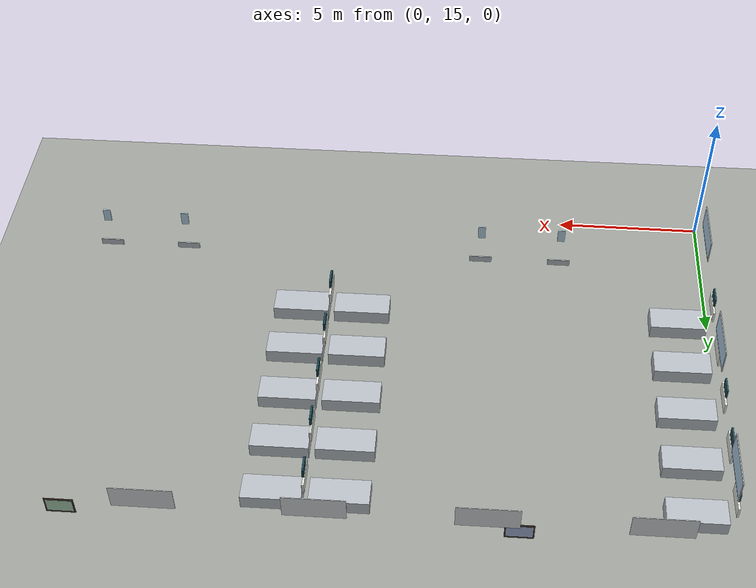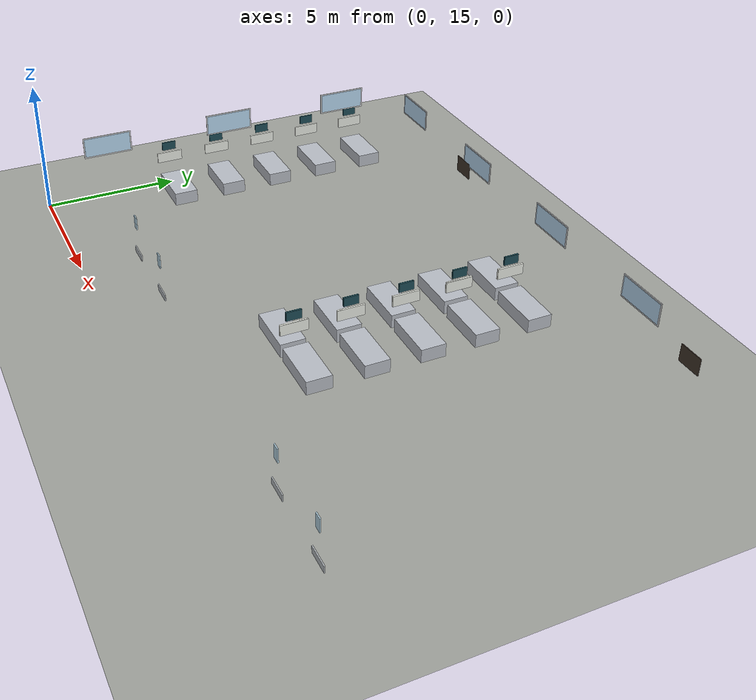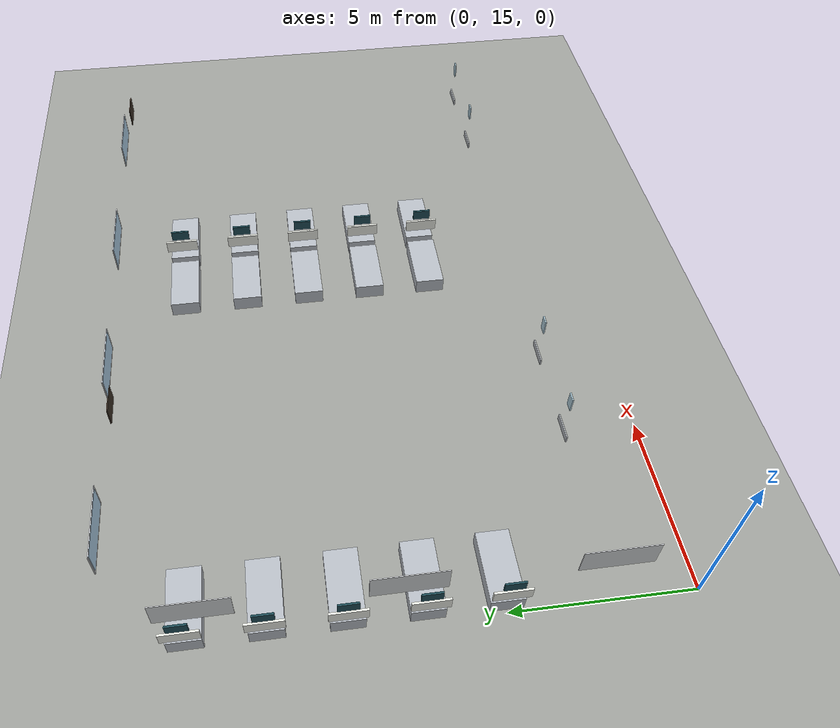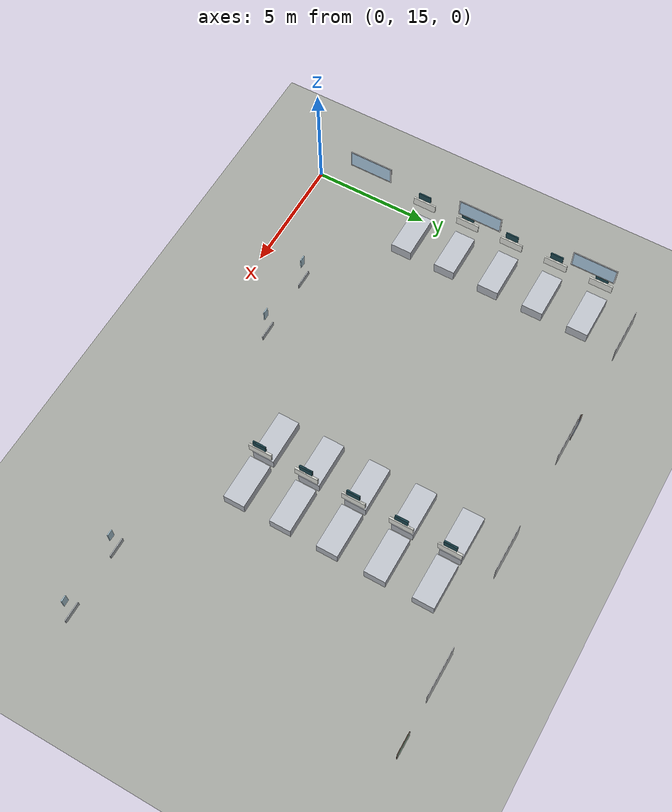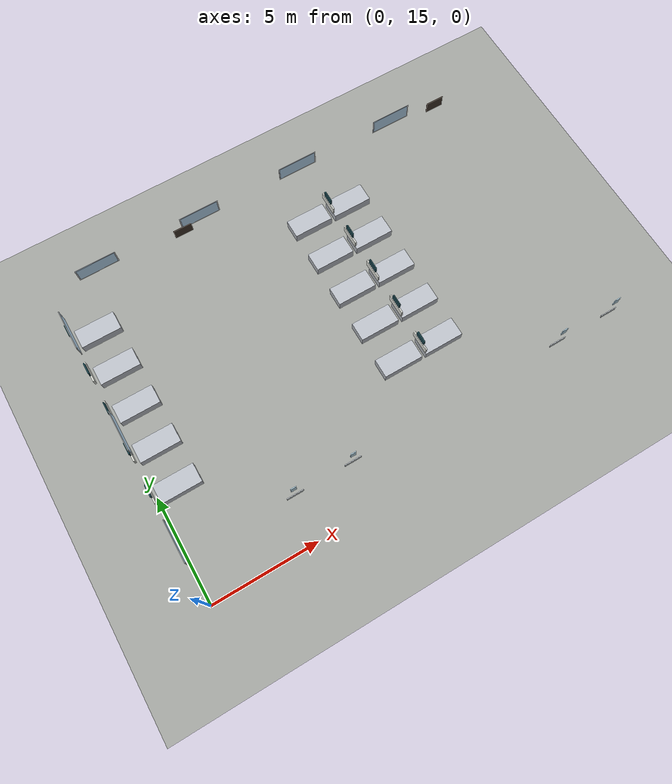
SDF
<sdf version="1.9">
 <world name="hospital">
  <model name="ground_plane">
   <static>true</static>
   <link name="link">
    <collision name="collision">
     <geometry><plane><normal>0 0 1</normal><size>200 200</size></plane></geometry>
    </collision>
    <visual name="visual">
     <pose>0 0 -0.03 0 0 0</pose>
     <cast_shadows>false</cast_shadows>
     <geometry><plane><normal>0 0 1</normal><size>200 200</size></plane></geometry>
     <material>
      <ambient>0.310 0.315 0.305 1.0</ambient>
      <diffuse>0.620 0.630 0.610 1.0</diffuse>
      <specular>0.14 0.14 0.14 1</specular>
      <emissive>0.000 0.000 0.000 1</emissive>
     </material>
    </visual>
   </link>
  </model>
  <model name="bed_0">
   <static>true</static>
   <pose>1.05 20.0 0.25 0 0 0</pose>
   <link name="link">
    <collision name="c"><geometry><box><size>1.9 0.8999999999999986 0.5</size></box></geometry></collision>
    <visual name="v">
     <visibility_flags>2</visibility_flags>
     <geometry><box><size>1.9 0.8999999999999986 0.5</size></box></geometry>
     <material>
      <ambient>0.360 0.370 0.385 1.0</ambient>
      <diffuse>0.720 0.740 0.770 1.0</diffuse>
      <specular>0.14 0.14 0.14 1</specular>
      <emissive>0.000 0.000 0.000 1</emissive>
     </material>
    </visual>
   </link>
  </model>
  <model name="bed_1">
   <static>true</static>
   <pose>11.95 20.0 0.25 0 0 0</pose>
   <link name="link">
    <collision name="c">
     <geometry><box><size>1.9000000000000004 0.8999999999999986 0.5</size></box></geometry>
    </collision>
    <visual name="v">
     <visibility_flags>2</visibility_flags>
     <geometry><box><size>1.9000000000000004 0.8999999999999986 0.5</size></box></geometry>
     <material>
      <ambient>0.360 0.370 0.385 1.0</ambient>
      <diffuse>0.720 0.740 0.770 1.0</diffuse>
      <specular>0.14 0.14 0.14 1</specular>
      <emissive>0.000 0.000 0.000 1</emissive>
     </material>
    </visual>
   </link>
  </model>
  <model name="bed_2">
   <static>true</static>
   <pose>1.05 24.0 0.25 0 0 0</pose>
   <link name="link">
    <collision name="c"><geometry><box><size>1.9 0.8999999999999986 0.5</size></box></geometry></collision>
    <visual name="v">
     <visibility_flags>2</visibility_flags>
     <geometry><box><size>1.9 0.8999999999999986 0.5</size></box></geometry>
     <material>
      <ambient>0.360 0.370 0.385 1.0</ambient>
      <diffuse>0.720 0.740 0.770 1.0</diffuse>
      <specular>0.14 0.14 0.14 1</specular>
      <emissive>0.000 0.000 0.000 1</emissive>
     </material>
    </visual>
   </link>
  </model>
  <model name="bed_3">
   <static>true</static>
   <pose>11.95 24.0 0.25 0 0 0</pose>
   <link name="link">
    <collision name="c">
     <geometry><box><size>1.9000000000000004 0.8999999999999986 0.5</size></box></geometry>
    </collision>
    <visual name="v">
     <visibility_flags>2</visibility_flags>
     <geometry><box><size>1.9000000000000004 0.8999999999999986 0.5</size></box></geometry>
     <material>
      <ambient>0.360 0.370 0.385 1.0</ambient>
      <diffuse>0.720 0.740 0.770 1.0</diffuse>
      <specular>0.14 0.14 0.14 1</specular>
      <emissive>0.000 0.000 0.000 1</emissive>
     </material>
    </visual>
   </link>
  </model>
  <model name="bed_4">
   <static>true</static>
   <pose>1.05 28.0 0.25 0 0 0</pose>
   <link name="link">
    <collision name="c"><geometry><box><size>1.9 0.8999999999999986 0.5</size></box></geometry></collision>
    <visual name="v">
     <visibility_flags>2</visibility_flags>
     <geometry><box><size>1.9 0.8999999999999986 0.5</size></box></geometry>
     <material>
      <ambient>0.360 0.370 0.385 1.0</ambient>
      <diffuse>0.720 0.740 0.770 1.0</diffuse>
      <specular>0.14 0.14 0.14 1</specular>
      <emissive>0.000 0.000 0.000 1</emissive>
     </material>
    </visual>
   </link>
  </model>
  <model name="bed_5">
   <static>true</static>
   <pose>11.95 28.0 0.25 0 0 0</pose>
   <link name="link">
    <collision name="c">
     <geometry><box><size>1.9000000000000004 0.8999999999999986 0.5</size></box></geometry>
    </collision>
    <visual name="v">
     <visibility_flags>2</visibility_flags>
     <geometry><box><size>1.9000000000000004 0.8999999999999986 0.5</size></box></geometry>
     <material>
      <ambient>0.360 0.370 0.385 1.0</ambient>
      <diffuse>0.720 0.740 0.770 1.0</diffuse>
      <specular>0.14 0.14 0.14 1</specular>
      <emissive>0.000 0.000 0.000 1</emissive>
     </material>
    </visual>
   </link>
  </model>
  <model name="bed_6">
   <static>true</static>
   <pose>14.05 20.0 0.25 0 0 0</pose>
   <link name="link">
    <collision name="c">
     <geometry><box><size>1.9000000000000004 0.8999999999999986 0.5</size></box></geometry>
    </collision>
    <visual name="v">
     <visibility_flags>2</visibility_flags>
     <geometry><box><size>1.9000000000000004 0.8999999999999986 0.5</size></box></geometry>
     <material>
      <ambient>0.360 0.370 0.385 1.0</ambient>
      <diffuse>0.720 0.740 0.770 1.0</diffuse>
      <specular>0.14 0.14 0.14 1</specular>
      <emissive>0.000 0.000 0.000 1</emissive>
     </material>
    </visual>
   </link>
  </model>
  <model name="bed_8">
   <static>true</static>
   <pose>14.05 24.0 0.25 0 0 0</pose>
   <link name="link">
    <collision name="c">
     <geometry><box><size>1.9000000000000004 0.8999999999999986 0.5</size></box></geometry>
    </collision>
    <visual name="v">
     <visibility_flags>2</visibility_flags>
     <geometry><box><size>1.9000000000000004 0.8999999999999986 0.5</size></box></geometry>
     <material>
      <ambient>0.360 0.370 0.385 1.0</ambient>
      <diffuse>0.720 0.740 0.770 1.0</diffuse>
      <specular>0.14 0.14 0.14 1</specular>
      <emissive>0.000 0.000 0.000 1</emissive>
     </material>
    </visual>
   </link>
  </model>
  <model name="bed_10">
   <static>true</static>
   <pose>14.05 28.0 0.25 0 0 0</pose>
   <link name="link">
    <collision name="c">
     <geometry><box><size>1.9000000000000004 0.8999999999999986 0.5</size></box></geometry>
    </collision>
    <visual name="v">
     <visibility_flags>2</visibility_flags>
     <geometry><box><size>1.9000000000000004 0.8999999999999986 0.5</size></box></geometry>
     <material>
      <ambient>0.360 0.370 0.385 1.0</ambient>
      <diffuse>0.720 0.740 0.770 1.0</diffuse>
      <specular>0.14 0.14 0.14 1</specular>
      <emissive>0.000 0.000 0.000 1</emissive>
     </material>
    </visual>
   </link>
  </model>
  <model name="bed_32">
   <static>true</static>
   <pose>1.05 22.0 0.25 0 0 0</pose>
   <link name="link">
    <collision name="c"><geometry><box><size>1.9 0.8999999999999986 0.5</size></box></geometry></collision>
    <visual name="v">
     <visibility_flags>2</visibility_flags>
     <geometry><box><size>1.9 0.8999999999999986 0.5</size></box></geometry>
     <material>
      <ambient>0.360 0.370 0.385 1.0</ambient>
      <diffuse>0.720 0.740 0.770 1.0</diffuse>
      <specular>0.14 0.14 0.14 1</specular>
      <emissive>0.000 0.000 0.000 1</emissive>
     </material>
    </visual>
   </link>
  </model>
  <model name="bed_33">
   <static>true</static>
   <pose>11.95 22.0 0.25 0 0 0</pose>
   <link name="link">
    <collision name="c">
     <geometry><box><size>1.9000000000000004 0.8999999999999986 0.5</size></box></geometry>
    </collision>
    <visual name="v">
     <visibility_flags>2</visibility_flags>
     <geometry><box><size>1.9000000000000004 0.8999999999999986 0.5</size></box></geometry>
     <material>
      <ambient>0.360 0.370 0.385 1.0</ambient>
      <diffuse>0.720 0.740 0.770 1.0</diffuse>
      <specular>0.14 0.14 0.14 1</specular>
      <emissive>0.000 0.000 0.000 1</emissive>
     </material>
    </visual>
   </link>
  </model>
  <model name="bed_34">
   <static>true</static>
   <pose>1.05 26.0 0.25 0 0 0</pose>
   <link name="link">
    <collision name="c"><geometry><box><size>1.9 0.8999999999999986 0.5</size></box></geometry></collision>
    <visual name="v">
     <visibility_flags>2</visibility_flags>
     <geometry><box><size>1.9 0.8999999999999986 0.5</size></box></geometry>
     <material>
      <ambient>0.360 0.370 0.385 1.0</ambient>
      <diffuse>0.720 0.740 0.770 1.0</diffuse>
      <specular>0.14 0.14 0.14 1</specular>
      <emissive>0.000 0.000 0.000 1</emissive>
     </material>
    </visual>
   </link>
  </model>
  <model name="bed_35">
   <static>true</static>
   <pose>11.95 26.0 0.25 0 0 0</pose>
   <link name="link">
    <collision name="c">
     <geometry><box><size>1.9000000000000004 0.8999999999999986 0.5</size></box></geometry>
    </collision>
    <visual name="v">
     <visibility_flags>2</visibility_flags>
     <geometry><box><size>1.9000000000000004 0.8999999999999986 0.5</size></box></geometry>
     <material>
      <ambient>0.360 0.370 0.385 1.0</ambient>
      <diffuse>0.720 0.740 0.770 1.0</diffuse>
      <specular>0.14 0.14 0.14 1</specular>
      <emissive>0.000 0.000 0.000 1</emissive>
     </material>
    </visual>
   </link>
  </model>
  <model name="bed_36">
   <static>true</static>
   <pose>14.05 22.0 0.25 0 0 0</pose>
   <link name="link">
    <collision name="c">
     <geometry><box><size>1.9000000000000004 0.8999999999999986 0.5</size></box></geometry>
    </collision>
    <visual name="v">
     <visibility_flags>2</visibility_flags>
     <geometry><box><size>1.9000000000000004 0.8999999999999986 0.5</size></box></geometry>
     <material>
      <ambient>0.360 0.370 0.385 1.0</ambient>
      <diffuse>0.720 0.740 0.770 1.0</diffuse>
      <specular>0.14 0.14 0.14 1</specular>
      <emissive>0.000 0.000 0.000 1</emissive>
     </material>
    </visual>
   </link>
  </model>
  <model name="bed_38">
   <static>true</static>
   <pose>14.05 26.0 0.25 0 0 0</pose>
   <link name="link">
    <collision name="c">
     <geometry><box><size>1.9000000000000004 0.8999999999999986 0.5</size></box></geometry>
    </collision>
    <visual name="v">
     <visibility_flags>2</visibility_flags>
     <geometry><box><size>1.9000000000000004 0.8999999999999986 0.5</size></box></geometry>
     <material>
      <ambient>0.360 0.370 0.385 1.0</ambient>
      <diffuse>0.720 0.740 0.770 1.0</diffuse>
      <specular>0.14 0.14 0.14 1</specular>
      <emissive>0.000 0.000 0.000 1</emissive>
     </material>
    </visual>
   </link>
  </model>
  <model name="bed_0_panel">
   <static>true</static>
   <pose>-0.010000000000000009 20.0 1.15 0 0 0</pose>
   <link name="link">
    <visual name="v">
     <cast_shadows>false</cast_shadows>
     <geometry><box><size>0.06 0.9899999999999985 0.4</size></box></geometry>
     <material>
      <ambient>0.460 0.465 0.450 1.0</ambient>
      <diffuse>0.920 0.930 0.900 1.0</diffuse>
      <specular>0.14 0.14 0.14 1</specular>
      <emissive>0.000 0.000 0.000 1</emissive>
     </material>
    </visual>
   </link>
  </model>
  <model name="bed_0_monitor">
   <static>true</static>
   <pose>-0.010000000000000009 20.0 1.615 0 0 0</pose>
   <link name="link">
    <visual name="v">
     <cast_shadows>false</cast_shadows>
     <geometry><box><size>0.05 0.5444999999999992 0.33</size></box></geometry>
     <material>
      <ambient>0.060 0.150 0.170 1.0</ambient>
      <diffuse>0.120 0.300 0.340 1.0</diffuse>
      <specular>0.14 0.14 0.14 1</specular>
      <emissive>0.042 0.105 0.119 1</emissive>
     </material>
    </visual>
   </link>
  </model>
  <model name="bed_1_panel">
   <static>true</static>
   <pose>13.01 20.0 1.15 0 0 0</pose>
   <link name="link">
    <visual name="v">
     <cast_shadows>false</cast_shadows>
     <geometry><box><size>0.06 0.9899999999999985 0.4</size></box></geometry>
     <material>
      <ambient>0.460 0.465 0.450 1.0</ambient>
      <diffuse>0.920 0.930 0.900 1.0</diffuse>
      <specular>0.14 0.14 0.14 1</specular>
      <emissive>0.000 0.000 0.000 1</emissive>
     </material>
    </visual>
   </link>
  </model>
  <model name="bed_1_monitor">
   <static>true</static>
   <pose>13.01 20.0 1.615 0 0 0</pose>
   <link name="link">
    <visual name="v">
     <cast_shadows>false</cast_shadows>
     <geometry><box><size>0.05 0.5444999999999992 0.33</size></box></geometry>
     <material>
      <ambient>0.060 0.150 0.170 1.0</ambient>
      <diffuse>0.120 0.300 0.340 1.0</diffuse>
      <specular>0.14 0.14 0.14 1</specular>
      <emissive>0.042 0.105 0.119 1</emissive>
     </material>
    </visual>
   </link>
  </model>
  <model name="bed_2_panel">
   <static>true</static>
   <pose>-0.010000000000000009 24.0 1.15 0 0 0</pose>
   <link name="link">
    <visual name="v">
     <cast_shadows>false</cast_shadows>
     <geometry><box><size>0.06 0.9899999999999985 0.4</size></box></geometry>
     <material>
      <ambient>0.460 0.465 0.450 1.0</ambient>
      <diffuse>0.920 0.930 0.900 1.0</diffuse>
      <specular>0.14 0.14 0.14 1</specular>
      <emissive>0.000 0.000 0.000 1</emissive>
     </material>
    </visual>
   </link>
  </model>
  <model name="bed_2_monitor">
   <static>true</static>
   <pose>-0.010000000000000009 24.0 1.615 0 0 0</pose>
   <link name="link">
    <visual name="v">
     <cast_shadows>false</cast_shadows>
     <geometry><box><size>0.05 0.5444999999999992 0.33</size></box></geometry>
     <material>
      <ambient>0.060 0.150 0.170 1.0</ambient>
      <diffuse>0.120 0.300 0.340 1.0</diffuse>
      <specular>0.14 0.14 0.14 1</specular>
      <emissive>0.042 0.105 0.119 1</emissive>
     </material>
    </visual>
   </link>
  </model>
  <model name="bed_3_panel">
   <static>true</static>
   <pose>13.01 24.0 1.15 0 0 0</pose>
   <link name="link">
    <visual name="v">
     <cast_shadows>false</cast_shadows>
     <geometry><box><size>0.06 0.9899999999999985 0.4</size></box></geometry>
     <material>
      <ambient>0.460 0.465 0.450 1.0</ambient>
      <diffuse>0.920 0.930 0.900 1.0</diffuse>
      <specular>0.14 0.14 0.14 1</specular>
      <emissive>0.000 0.000 0.000 1</emissive>
     </material>
    </visual>
   </link>
  </model>
  <model name="bed_3_monitor">
   <static>true</static>
   <pose>13.01 24.0 1.615 0 0 0</pose>
   <link name="link">
    <visual name="v">
     <cast_shadows>false</cast_shadows>
     <geometry><box><size>0.05 0.5444999999999992 0.33</size></box></geometry>
     <material>
      <ambient>0.060 0.150 0.170 1.0</ambient>
      <diffuse>0.120 0.300 0.340 1.0</diffuse>
      <specular>0.14 0.14 0.14 1</specular>
      <emissive>0.042 0.105 0.119 1</emissive>
     </material>
    </visual>
   </link>
  </model>
  <model name="bed_4_panel">
   <static>true</static>
   <pose>-0.010000000000000009 28.0 1.15 0 0 0</pose>
   <link name="link">
    <visual name="v">
     <cast_shadows>false</cast_shadows>
     <geometry><box><size>0.06 0.9899999999999985 0.4</size></box></geometry>
     <material>
      <ambient>0.460 0.465 0.450 1.0</ambient>
      <diffuse>0.920 0.930 0.900 1.0</diffuse>
      <specular>0.14 0.14 0.14 1</specular>
      <emissive>0.000 0.000 0.000 1</emissive>
     </material>
    </visual>
   </link>
  </model>
  <model name="bed_4_monitor">
   <static>true</static>
   <pose>-0.010000000000000009 28.0 1.615 0 0 0</pose>
   <link name="link">
    <visual name="v">
     <cast_shadows>false</cast_shadows>
     <geometry><box><size>0.05 0.5444999999999992 0.33</size></box></geometry>
     <material>
      <ambient>0.060 0.150 0.170 1.0</ambient>
      <diffuse>0.120 0.300 0.340 1.0</diffuse>
      <specular>0.14 0.14 0.14 1</specular>
      <emissive>0.042 0.105 0.119 1</emissive>
     </material>
    </visual>
   </link>
  </model>
  <model name="bed_5_panel">
   <static>true</static>
   <pose>13.01 28.0 1.15 0 0 0</pose>
   <link name="link">
    <visual name="v">
     <cast_shadows>false</cast_shadows>
     <geometry><box><size>0.06 0.9899999999999985 0.4</size></box></geometry>
     <material>
      <ambient>0.460 0.465 0.450 1.0</ambient>
      <diffuse>0.920 0.930 0.900 1.0</diffuse>
      <specular>0.14 0.14 0.14 1</specular>
      <emissive>0.000 0.000 0.000 1</emissive>
     </material>
    </visual>
   </link>
  </model>
  <model name="bed_5_monitor">
   <static>true</static>
   <pose>13.01 28.0 1.615 0 0 0</pose>
   <link name="link">
    <visual name="v">
     <cast_shadows>false</cast_shadows>
     <geometry><box><size>0.05 0.5444999999999992 0.33</size></box></geometry>
     <material>
      <ambient>0.060 0.150 0.170 1.0</ambient>
      <diffuse>0.120 0.300 0.340 1.0</diffuse>
      <specular>0.14 0.14 0.14 1</specular>
      <emissive>0.042 0.105 0.119 1</emissive>
     </material>
    </visual>
   </link>
  </model>
  <model name="bed_6_panel">
   <static>true</static>
   <pose>12.99 20.0 1.15 0 0 0</pose>
   <link name="link">
    <visual name="v">
     <cast_shadows>false</cast_shadows>
     <geometry><box><size>0.06 0.9899999999999985 0.4</size></box></geometry>
     <material>
      <ambient>0.460 0.465 0.450 1.0</ambient>
      <diffuse>0.920 0.930 0.900 1.0</diffuse>
      <specular>0.14 0.14 0.14 1</specular>
      <emissive>0.000 0.000 0.000 1</emissive>
     </material>
    </visual>
   </link>
  </model>
  <model name="bed_6_monitor">
   <static>true</static>
   <pose>12.99 20.0 1.615 0 0 0</pose>
   <link name="link">
    <visual name="v">
     <cast_shadows>false</cast_shadows>
     <geometry><box><size>0.05 0.5444999999999992 0.33</size></box></geometry>
     <material>
      <ambient>0.060 0.150 0.170 1.0</ambient>
      <diffuse>0.120 0.300 0.340 1.0</diffuse>
      <specular>0.14 0.14 0.14 1</specular>
      <emissive>0.042 0.105 0.119 1</emissive>
     </material>
    </visual>
   </link>
  </model>
  <model name="bed_8_panel">
   <static>true</static>
   <pose>12.99 24.0 1.15 0 0 0</pose>
   <link name="link">
    <visual name="v">
     <cast_shadows>false</cast_shadows>
     <geometry><box><size>0.06 0.9899999999999985 0.4</size></box></geometry>
     <material>
      <ambient>0.460 0.465 0.450 1.0</ambient>
      <diffuse>0.920 0.930 0.900 1.0</diffuse>
      <specular>0.14 0.14 0.14 1</specular>
      <emissive>0.000 0.000 0.000 1</emissive>
     </material>
    </visual>
   </link>
  </model>
  <model name="bed_8_monitor">
   <static>true</static>
   <pose>12.99 24.0 1.615 0 0 0</pose>
   <link name="link">
    <visual name="v">
     <cast_shadows>false</cast_shadows>
     <geometry><box><size>0.05 0.5444999999999992 0.33</size></box></geometry>
     <material>
      <ambient>0.060 0.150 0.170 1.0</ambient>
      <diffuse>0.120 0.300 0.340 1.0</diffuse>
      <specular>0.14 0.14 0.14 1</specular>
      <emissive>0.042 0.105 0.119 1</emissive>
     </material>
    </visual>
   </link>
  </model>
  <model name="bed_10_panel">
   <static>true</static>
   <pose>12.99 28.0 1.15 0 0 0</pose>
   <link name="link">
    <visual name="v">
     <cast_shadows>false</cast_shadows>
     <geometry><box><size>0.06 0.9899999999999985 0.4</size></box></geometry>
     <material>
      <ambient>0.460 0.465 0.450 1.0</ambient>
      <diffuse>0.920 0.930 0.900 1.0</diffuse>
      <specular>0.14 0.14 0.14 1</specular>
      <emissive>0.000 0.000 0.000 1</emissive>
     </material>
    </visual>
   </link>
  </model>
  <model name="bed_10_monitor">
   <static>true</static>
   <pose>12.99 28.0 1.615 0 0 0</pose>
   <link name="link">
    <visual name="v">
     <cast_shadows>false</cast_shadows>
     <geometry><box><size>0.05 0.5444999999999992 0.33</size></box></geometry>
     <material>
      <ambient>0.060 0.150 0.170 1.0</ambient>
      <diffuse>0.120 0.300 0.340 1.0</diffuse>
      <specular>0.14 0.14 0.14 1</specular>
      <emissive>0.042 0.105 0.119 1</emissive>
     </material>
    </visual>
   </link>
  </model>
  <model name="bed_32_panel">
   <static>true</static>
   <pose>-0.010000000000000009 22.0 1.15 0 0 0</pose>
   <link name="link">
    <visual name="v">
     <cast_shadows>false</cast_shadows>
     <geometry><box><size>0.06 0.9899999999999985 0.4</size></box></geometry>
     <material>
      <ambient>0.460 0.465 0.450 1.0</ambient>
      <diffuse>0.920 0.930 0.900 1.0</diffuse>
      <specular>0.14 0.14 0.14 1</specular>
      <emissive>0.000 0.000 0.000 1</emissive>
     </material>
    </visual>
   </link>
  </model>
  <model name="bed_32_monitor">
   <static>true</static>
   <pose>-0.010000000000000009 22.0 1.615 0 0 0</pose>
   <link name="link">
    <visual name="v">
     <cast_shadows>false</cast_shadows>
     <geometry><box><size>0.05 0.5444999999999992 0.33</size></box></geometry>
     <material>
      <ambient>0.060 0.150 0.170 1.0</ambient>
      <diffuse>0.120 0.300 0.340 1.0</diffuse>
      <specular>0.14 0.14 0.14 1</specular>
      <emissive>0.042 0.105 0.119 1</emissive>
     </material>
    </visual>
   </link>
  </model>
  <model name="bed_33_panel">
   <static>true</static>
   <pose>13.01 22.0 1.15 0 0 0</pose>
   <link name="link">
    <visual name="v">
     <cast_shadows>false</cast_shadows>
     <geometry><box><size>0.06 0.9899999999999985 0.4</size></box></geometry>
     <material>
      <ambient>0.460 0.465 0.450 1.0</ambient>
      <diffuse>0.920 0.930 0.900 1.0</diffuse>
      <specular>0.14 0.14 0.14 1</specular>
      <emissive>0.000 0.000 0.000 1</emissive>
     </material>
    </visual>
   </link>
  </model>
  <model name="bed_33_monitor">
   <static>true</static>
   <pose>13.01 22.0 1.615 0 0 0</pose>
   <link name="link">
    <visual name="v">
     <cast_shadows>false</cast_shadows>
     <geometry><box><size>0.05 0.5444999999999992 0.33</size></box></geometry>
     <material>
      <ambient>0.060 0.150 0.170 1.0</ambient>
      <diffuse>0.120 0.300 0.340 1.0</diffuse>
      <specular>0.14 0.14 0.14 1</specular>
      <emissive>0.042 0.105 0.119 1</emissive>
     </material>
    </visual>
   </link>
  </model>
  <model name="bed_34_panel">
   <static>true</static>
   <pose>-0.010000000000000009 26.0 1.15 0 0 0</pose>
   <link name="link">
    <visual name="v">
     <cast_shadows>false</cast_shadows>
     <geometry><box><size>0.06 0.9899999999999985 0.4</size></box></geometry>
     <material>
      <ambient>0.460 0.465 0.450 1.0</ambient>
      <diffuse>0.920 0.930 0.900 1.0</diffuse>
      <specular>0.14 0.14 0.14 1</specular>
      <emissive>0.000 0.000 0.000 1</emissive>
     </material>
    </visual>
   </link>
  </model>
  <model name="bed_34_monitor">
   <static>true</static>
   <pose>-0.010000000000000009 26.0 1.615 0 0 0</pose>
   <link name="link">
    <visual name="v">
     <cast_shadows>false</cast_shadows>
     <geometry><box><size>0.05 0.5444999999999992 0.33</size></box></geometry>
     <material>
      <ambient>0.060 0.150 0.170 1.0</ambient>
      <diffuse>0.120 0.300 0.340 1.0</diffuse>
      <specular>0.14 0.14 0.14 1</specular>
      <emissive>0.042 0.105 0.119 1</emissive>
     </material>
    </visual>
   </link>
  </model>
  <model name="bed_35_panel">
   <static>true</static>
   <pose>13.01 26.0 1.15 0 0 0</pose>
   <link name="link">
    <visual name="v">
     <cast_shadows>false</cast_shadows>
     <geometry><box><size>0.06 0.9899999999999985 0.4</size></box></geometry>
     <material>
      <ambient>0.460 0.465 0.450 1.0</ambient>
      <diffuse>0.920 0.930 0.900 1.0</diffuse>
      <specular>0.14 0.14 0.14 1</specular>
      <emissive>0.000 0.000 0.000 1</emissive>
     </material>
    </visual>
   </link>
  </model>
  <model name="bed_35_monitor">
   <static>true</static>
   <pose>13.01 26.0 1.615 0 0 0</pose>
   <link name="link">
    <visual name="v">
     <cast_shadows>false</cast_shadows>
     <geometry><box><size>0.05 0.5444999999999992 0.33</size></box></geometry>
     <material>
      <ambient>0.060 0.150 0.170 1.0</ambient>
      <diffuse>0.120 0.300 0.340 1.0</diffuse>
      <specular>0.14 0.14 0.14 1</specular>
      <emissive>0.042 0.105 0.119 1</emissive>
     </material>
    </visual>
   </link>
  </model>
  <model name="bed_36_panel">
   <static>true</static>
   <pose>12.99 22.0 1.15 0 0 0</pose>
   <link name="link">
    <visual name="v">
     <cast_shadows>false</cast_shadows>
     <geometry><box><size>0.06 0.9899999999999985 0.4</size></box></geometry>
     <material>
      <ambient>0.460 0.465 0.450 1.0</ambient>
      <diffuse>0.920 0.930 0.900 1.0</diffuse>
      <specular>0.14 0.14 0.14 1</specular>
      <emissive>0.000 0.000 0.000 1</emissive>
     </material>
    </visual>
   </link>
  </model>
  <model name="bed_36_monitor">
   <static>true</static>
   <pose>12.99 22.0 1.615 0 0 0</pose>
   <link name="link">
    <visual name="v">
     <cast_shadows>false</cast_shadows>
     <geometry><box><size>0.05 0.5444999999999992 0.33</size></box></geometry>
     <material>
      <ambient>0.060 0.150 0.170 1.0</ambient>
      <diffuse>0.120 0.300 0.340 1.0</diffuse>
      <specular>0.14 0.14 0.14 1</specular>
      <emissive>0.042 0.105 0.119 1</emissive>
     </material>
    </visual>
   </link>
  </model>
  <model name="bed_38_panel">
   <static>true</static>
   <pose>12.99 26.0 1.15 0 0 0</pose>
   <link name="link">
    <visual name="v">
     <cast_shadows>false</cast_shadows>
     <geometry><box><size>0.06 0.9899999999999985 0.4</size></box></geometry>
     <material>
      <ambient>0.460 0.465 0.450 1.0</ambient>
      <diffuse>0.920 0.930 0.900 1.0</diffuse>
      <specular>0.14 0.14 0.14 1</specular>
      <emissive>0.000 0.000 0.000 1</emissive>
     </material>
    </visual>
   </link>
  </model>
  <model name="bed_38_monitor">
   <static>true</static>
   <pose>12.99 26.0 1.615 0 0 0</pose>
   <link name="link">
    <visual name="v">
     <cast_shadows>false</cast_shadows>
     <geometry><box><size>0.05 0.5444999999999992 0.33</size></box></geometry>
     <material>
      <ambient>0.060 0.150 0.170 1.0</ambient>
      <diffuse>0.120 0.300 0.340 1.0</diffuse>
      <specular>0.14 0.14 0.14 1</specular>
      <emissive>0.042 0.105 0.119 1</emissive>
     </material>
    </visual>
   </link>
  </model>
  <model name="door_0_glass0">
   <static>true</static>
   <pose>5.09 17.141 1.45 0 0 0</pose>
   <link name="link">
    <visual name="v">
     <visibility_flags>4</visibility_flags>
     <geometry><box><size>0.26 0.04 0.5</size></box></geometry>
     <material>
      <ambient>0.350 0.410 0.440 1.0</ambient>
      <diffuse>0.700 0.820 0.880 1.0</diffuse>
      <specular>0.14 0.14 0.14 1</specular>
      <emissive>0.140 0.164 0.176 1</emissive>
     </material>
    </visual>
   </link>
  </model>
  <model name="door_0_kick0">
   <static>true</static>
   <pose>5.09 17.141 0.14 0 0 0</pose>
   <link name="link">
    <visual name="v">
     <visibility_flags>4</visibility_flags>
     <geometry><box><size>0.8 0.04 0.24</size></box></geometry>
     <material>
      <ambient>0.350 0.360 0.370 1.0</ambient>
      <diffuse>0.700 0.720 0.740 1.0</diffuse>
      <specular>0.14 0.14 0.14 1</specular>
      <emissive>0.000 0.000 0.000 1</emissive>
     </material>
    </visual>
   </link>
  </model>
  <model name="door_0_glass1">
   <static>true</static>
   <pose>7.909999999999999 17.141 1.45 0 0 0</pose>
   <link name="link">
    <visual name="v">
     <visibility_flags>4</visibility_flags>
     <geometry><box><size>0.26 0.04 0.5</size></box></geometry>
     <material>
      <ambient>0.350 0.410 0.440 1.0</ambient>
      <diffuse>0.700 0.820 0.880 1.0</diffuse>
      <specular>0.14 0.14 0.14 1</specular>
      <emissive>0.140 0.164 0.176 1</emissive>
     </material>
    </visual>
   </link>
  </model>
  <model name="door_0_kick1">
   <static>true</static>
   <pose>7.909999999999999 17.141 0.14 0 0 0</pose>
   <link name="link">
    <visual name="v">
     <visibility_flags>4</visibility_flags>
     <geometry><box><size>0.8 0.04 0.24</size></box></geometry>
     <material>
      <ambient>0.350 0.360 0.370 1.0</ambient>
      <diffuse>0.700 0.720 0.740 1.0</diffuse>
      <specular>0.14 0.14 0.14 1</specular>
      <emissive>0.000 0.000 0.000 1</emissive>
     </material>
    </visual>
   </link>
  </model>
  <model name="door_1_glass0">
   <static>true</static>
   <pose>18.590000000000003 17.141 1.45 0 0 0</pose>
   <link name="link">
    <visual name="v">
     <visibility_flags>4</visibility_flags>
     <geometry><box><size>0.26 0.04 0.5</size></box></geometry>
     <material>
      <ambient>0.350 0.410 0.440 1.0</ambient>
      <diffuse>0.700 0.820 0.880 1.0</diffuse>
      <specular>0.14 0.14 0.14 1</specular>
      <emissive>0.140 0.164 0.176 1</emissive>
     </material>
    </visual>
   </link>
  </model>
  <model name="door_1_kick0">
   <static>true</static>
   <pose>18.590000000000003 17.141 0.14 0 0 0</pose>
   <link name="link">
    <visual name="v">
     <visibility_flags>4</visibility_flags>
     <geometry><box><size>0.8 0.04 0.24</size></box></geometry>
     <material>
      <ambient>0.350 0.360 0.370 1.0</ambient>
      <diffuse>0.700 0.720 0.740 1.0</diffuse>
      <specular>0.14 0.14 0.14 1</specular>
      <emissive>0.000 0.000 0.000 1</emissive>
     </material>
    </visual>
   </link>
  </model>
  <model name="door_1_glass1">
   <static>true</static>
   <pose>21.409999999999997 17.141 1.45 0 0 0</pose>
   <link name="link">
    <visual name="v">
     <visibility_flags>4</visibility_flags>
     <geometry><box><size>0.26 0.04 0.5</size></box></geometry>
     <material>
      <ambient>0.350 0.410 0.440 1.0</ambient>
      <diffuse>0.700 0.820 0.880 1.0</diffuse>
      <specular>0.14 0.14 0.14 1</specular>
      <emissive>0.140 0.164 0.176 1</emissive>
     </material>
    </visual>
   </link>
  </model>
  <model name="door_1_kick1">
   <static>true</static>
   <pose>21.409999999999997 17.141 0.14 0 0 0</pose>
   <link name="link">
    <visual name="v">
     <visibility_flags>4</visibility_flags>
     <geometry><box><size>0.8 0.04 0.24</size></box></geometry>
     <material>
      <ambient>0.350 0.360 0.370 1.0</ambient>
      <diffuse>0.700 0.720 0.740 1.0</diffuse>
      <specular>0.14 0.14 0.14 1</specular>
      <emissive>0.000 0.000 0.000 1</emissive>
     </material>
    </visual>
   </link>
  </model>
  <model name="wall_1_winf0">
   <static>true</static>
   <pose>2.4124999999999988 29.888 2.225 0 0 0</pose>
   <link name="link">
    <visual name="v">
     <cast_shadows>false</cast_shadows>
     <geometry><box><size>1.9000000000000001 0.024 0.85</size></box></geometry>
     <material>
      <ambient>0.410 0.415 0.420 1.0</ambient>
      <diffuse>0.820 0.830 0.840 1.0</diffuse>
      <specular>0.14 0.14 0.14 1</specular>
      <emissive>0.000 0.000 0.000 1</emissive>
     </material>
    </visual>
   </link>
  </model>
  <model name="wall_1_win0">
   <static>true</static>
   <pose>2.4124999999999988 29.880000000000003 2.225 0 0 0</pose>
   <link name="link">
    <visual name="v">
     <cast_shadows>false</cast_shadows>
     <geometry><box><size>1.8 0.012 0.75</size></box></geometry>
     <material>
      <ambient>0.360 0.425 0.475 1.0</ambient>
      <diffuse>0.720 0.850 0.950 1.0</diffuse>
      <specular>0.14 0.14 0.14 1</specular>
      <emissive>0.468 0.552 0.617 1</emissive>
     </material>
    </visual>
   </link>
  </model>
  <model name="wall_1_winf1">
   <static>true</static>
   <pose>7.437499999999999 29.888 2.225 0 0 0</pose>
   <link name="link">
    <visual name="v">
     <cast_shadows>false</cast_shadows>
     <geometry><box><size>1.9000000000000001 0.024 0.85</size></box></geometry>
     <material>
      <ambient>0.410 0.415 0.420 1.0</ambient>
      <diffuse>0.820 0.830 0.840 1.0</diffuse>
      <specular>0.14 0.14 0.14 1</specular>
      <emissive>0.000 0.000 0.000 1</emissive>
     </material>
    </visual>
   </link>
  </model>
  <model name="wall_1_win1">
   <static>true</static>
   <pose>7.437499999999999 29.880000000000003 2.225 0 0 0</pose>
   <link name="link">
    <visual name="v">
     <cast_shadows>false</cast_shadows>
     <geometry><box><size>1.8 0.012 0.75</size></box></geometry>
     <material>
      <ambient>0.360 0.425 0.475 1.0</ambient>
      <diffuse>0.720 0.850 0.950 1.0</diffuse>
      <specular>0.14 0.14 0.14 1</specular>
      <emissive>0.468 0.552 0.617 1</emissive>
     </material>
    </visual>
   </link>
  </model>
  <model name="wall_1_winf2">
   <static>true</static>
   <pose>12.462499999999999 29.888 2.225 0 0 0</pose>
   <link name="link">
    <visual name="v">
     <cast_shadows>false</cast_shadows>
     <geometry><box><size>1.9000000000000001 0.024 0.85</size></box></geometry>
     <material>
      <ambient>0.410 0.415 0.420 1.0</ambient>
      <diffuse>0.820 0.830 0.840 1.0</diffuse>
      <specular>0.14 0.14 0.14 1</specular>
      <emissive>0.000 0.000 0.000 1</emissive>
     </material>
    </visual>
   </link>
  </model>
  <model name="wall_1_win2">
   <static>true</static>
   <pose>12.462499999999999 29.880000000000003 2.225 0 0 0</pose>
   <link name="link">
    <visual name="v">
     <cast_shadows>false</cast_shadows>
     <geometry><box><size>1.8 0.012 0.75</size></box></geometry>
     <material>
      <ambient>0.360 0.425 0.475 1.0</ambient>
      <diffuse>0.720 0.850 0.950 1.0</diffuse>
      <specular>0.14 0.14 0.14 1</specular>
      <emissive>0.468 0.552 0.617 1</emissive>
     </material>
    </visual>
   </link>
  </model>
  <model name="wall_1_winf3">
   <static>true</static>
   <pose>17.4875 29.888 2.225 0 0 0</pose>
   <link name="link">
    <visual name="v">
     <cast_shadows>false</cast_shadows>
     <geometry><box><size>1.9000000000000001 0.024 0.85</size></box></geometry>
     <material>
      <ambient>0.410 0.415 0.420 1.0</ambient>
      <diffuse>0.820 0.830 0.840 1.0</diffuse>
      <specular>0.14 0.14 0.14 1</specular>
      <emissive>0.000 0.000 0.000 1</emissive>
     </material>
    </visual>
   </link>
  </model>
  <model name="wall_1_win3">
   <static>true</static>
   <pose>17.4875 29.880000000000003 2.225 0 0 0</pose>
   <link name="link">
    <visual name="v">
     <cast_shadows>false</cast_shadows>
     <geometry><box><size>1.8 0.012 0.75</size></box></geometry>
     <material>
      <ambient>0.360 0.425 0.475 1.0</ambient>
      <diffuse>0.720 0.850 0.950 1.0</diffuse>
      <specular>0.14 0.14 0.14 1</specular>
      <emissive>0.468 0.552 0.617 1</emissive>
     </material>
    </visual>
   </link>
  </model>
  <model name="wall_2_winf3">
   <static>true</static>
   <pose>0.112 17.51666666666667 2.225 0 0 0</pose>
   <link name="link">
    <visual name="v">
     <cast_shadows>false</cast_shadows>
     <geometry><box><size>0.024 1.9000000000000001 0.85</size></box></geometry>
     <material>
      <ambient>0.410 0.415 0.420 1.0</ambient>
      <diffuse>0.820 0.830 0.840 1.0</diffuse>
      <specular>0.14 0.14 0.14 1</specular>
      <emissive>0.000 0.000 0.000 1</emissive>
     </material>
    </visual>
   </link>
  </model>
  <model name="wall_2_win3">
   <static>true</static>
   <pose>0.12 17.51666666666667 2.225 0 0 0</pose>
   <link name="link">
    <visual name="v">
     <cast_shadows>false</cast_shadows>
     <geometry><box><size>0.012 1.8 0.75</size></box></geometry>
     <material>
      <ambient>0.360 0.425 0.475 1.0</ambient>
      <diffuse>0.720 0.850 0.950 1.0</diffuse>
      <specular>0.14 0.14 0.14 1</specular>
      <emissive>0.468 0.552 0.617 1</emissive>
     </material>
    </visual>
   </link>
  </model>
  <model name="wall_2_winf4">
   <static>true</static>
   <pose>0.112 22.55 2.225 0 0 0</pose>
   <link name="link">
    <visual name="v">
     <cast_shadows>false</cast_shadows>
     <geometry><box><size>0.024 1.9000000000000001 0.85</size></box></geometry>
     <material>
      <ambient>0.410 0.415 0.420 1.0</ambient>
      <diffuse>0.820 0.830 0.840 1.0</diffuse>
      <specular>0.14 0.14 0.14 1</specular>
      <emissive>0.000 0.000 0.000 1</emissive>
     </material>
    </visual>
   </link>
  </model>
  <model name="wall_2_win4">
   <static>true</static>
   <pose>0.12 22.55 2.225 0 0 0</pose>
   <link name="link">
    <visual name="v">
     <cast_shadows>false</cast_shadows>
     <geometry><box><size>0.012 1.8 0.75</size></box></geometry>
     <material>
      <ambient>0.360 0.425 0.475 1.0</ambient>
      <diffuse>0.720 0.850 0.950 1.0</diffuse>
      <specular>0.14 0.14 0.14 1</specular>
      <emissive>0.468 0.552 0.617 1</emissive>
     </material>
    </visual>
   </link>
  </model>
  <model name="wall_2_winf5">
   <static>true</static>
   <pose>0.112 27.583333333333332 2.225 0 0 0</pose>
   <link name="link">
    <visual name="v">
     <cast_shadows>false</cast_shadows>
     <geometry><box><size>0.024 1.9000000000000001 0.85</size></box></geometry>
     <material>
      <ambient>0.410 0.415 0.420 1.0</ambient>
      <diffuse>0.820 0.830 0.840 1.0</diffuse>
      <specular>0.14 0.14 0.14 1</specular>
      <emissive>0.000 0.000 0.000 1</emissive>
     </material>
    </visual>
   </link>
  </model>
  <model name="wall_2_win5">
   <static>true</static>
   <pose>0.12 27.583333333333332 2.225 0 0 0</pose>
   <link name="link">
    <visual name="v">
     <cast_shadows>false</cast_shadows>
     <geometry><box><size>0.012 1.8 0.75</size></box></geometry>
     <material>
      <ambient>0.360 0.425 0.475 1.0</ambient>
      <diffuse>0.720 0.850 0.950 1.0</diffuse>
      <specular>0.14 0.14 0.14 1</specular>
      <emissive>0.468 0.552 0.617 1</emissive>
     </material>
    </visual>
   </link>
  </model>
  <model name="art_male_ward_frame">
   <static>true</static>
   <pose>6.5 29.88 1.62 0 0 0</pose>
   <link name="link">
    <visual name="v">
     <cast_shadows>false</cast_shadows>
     <geometry><box><size>0.88 0.03 0.62</size></box></geometry>
     <material>
      <ambient>0.125 0.100 0.080 1.0</ambient>
      <diffuse>0.250 0.200 0.160 1.0</diffuse>
      <specular>0.14 0.14 0.14 1</specular>
      <emissive>0.000 0.000 0.000 1</emissive>
     </material>
    </visual>
   </link>
  </model>
  <model name="art_male_ward">
   <static>true</static>
   <pose>6.5 29.886 1.62 0 0 0</pose>
   <link name="link">
    <visual name="v">
     <cast_shadows>false</cast_shadows>
     <geometry><box><size>0.8 0.02 0.5</size></box></geometry>
     <material>
      <ambient>0.312 0.343 0.410 1.0</ambient>
      <diffuse>0.625 0.685 0.820 1.0</diffuse>
      <specular>0.14 0.14 0.14 1</specular>
      <emissive>0.000 0.000 0.000 1</emissive>
     </material>
    </visual>
   </link>
  </model>
  <model name="art_general_ward_1_frame">
   <static>true</static>
   <pose>20.0 29.88 1.62 0 0 0</pose>
   <link name="link">
    <visual name="v">
     <cast_shadows>false</cast_shadows>
     <geometry><box><size>0.88 0.03 0.62</size></box></geometry>
     <material>
      <ambient>0.125 0.100 0.080 1.0</ambient>
      <diffuse>0.250 0.200 0.160 1.0</diffuse>
      <specular>0.14 0.14 0.14 1</specular>
      <emissive>0.000 0.000 0.000 1</emissive>
     </material>
    </visual>
   </link>
  </model>
  <model name="art_general_ward_1">
   <static>true</static>
   <pose>20.0 29.886 1.62 0 0 0</pose>
   <link name="link">
    <visual name="v">
     <cast_shadows>false</cast_shadows>
     <geometry><box><size>0.8 0.02 0.5</size></box></geometry>
     <material>
      <ambient>0.320 0.395 0.343 1.0</ambient>
      <diffuse>0.640 0.790 0.685 1.0</diffuse>
      <specular>0.14 0.14 0.14 1</specular>
      <emissive>0.000 0.000 0.000 1</emissive>
     </material>
    </visual>
   </link>
  </model>
 </world>
</sdf>
